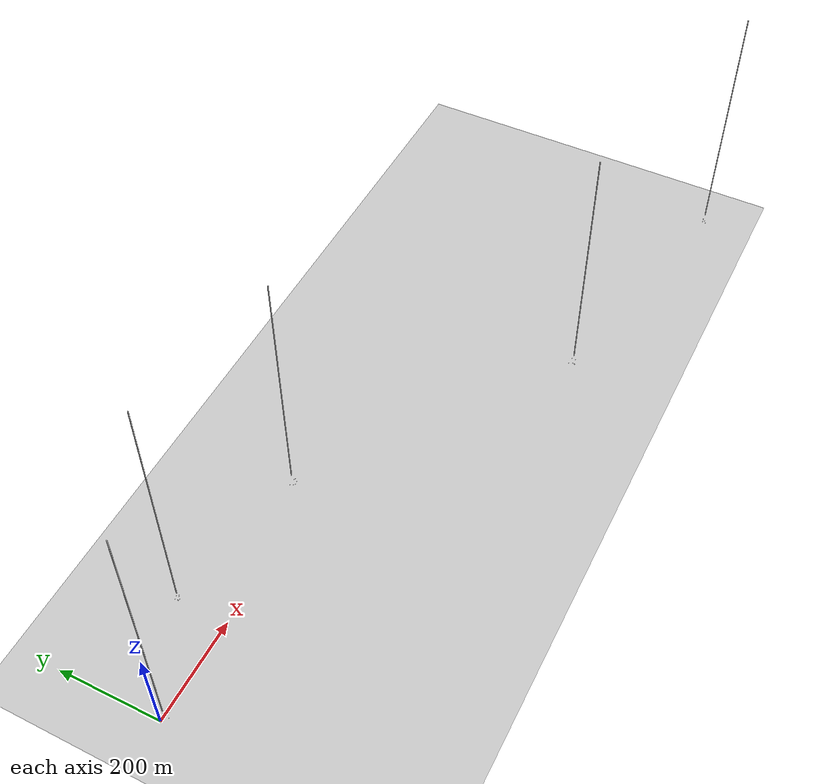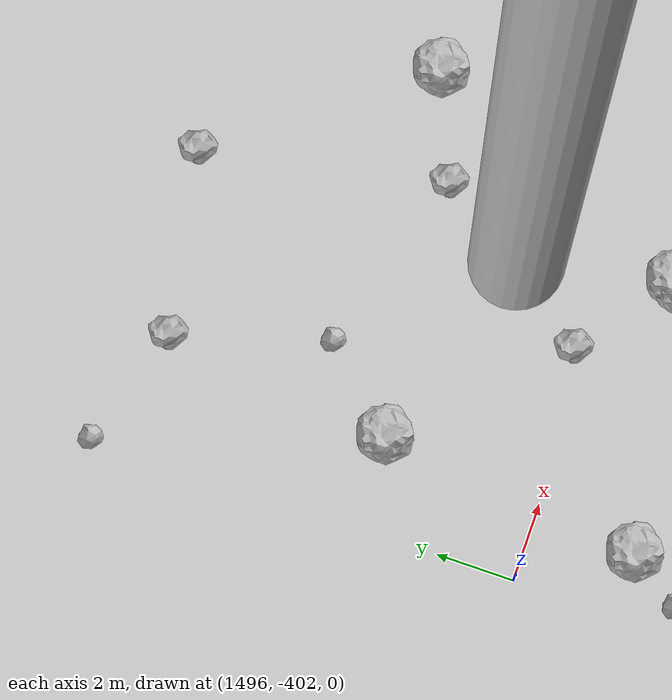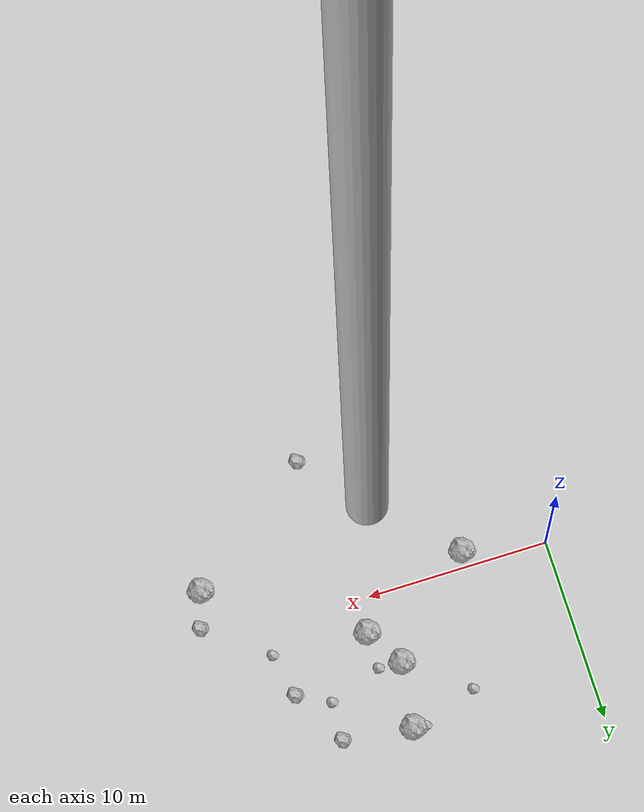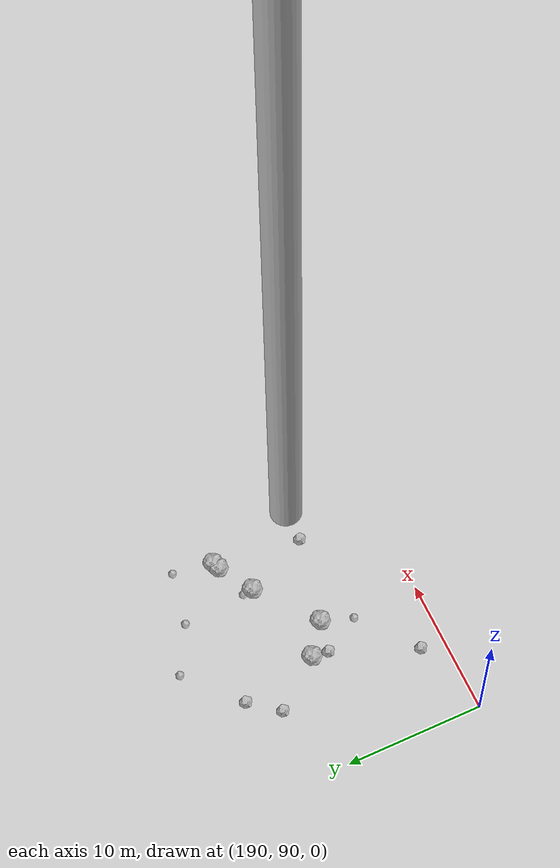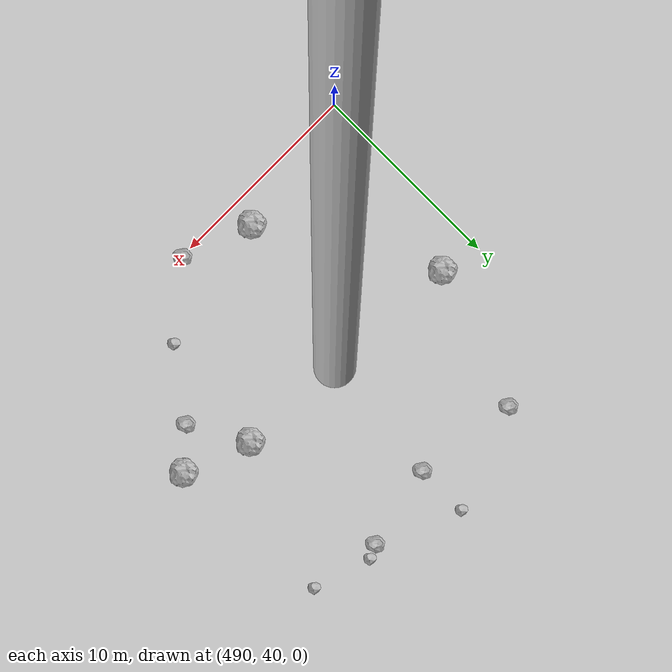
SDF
<?xml version="1.0" ?>
<sdf version="1.6">
  <world name="default">

    <include>
      <uri>model://custom_ground</uri>
    </include>

    <include>
      <uri>model://sun</uri>
    </include>

    <spherical_coordinates>
      <surface_model>EARTH_WGS84</surface_model>
      <latitude_deg>38.161479</latitude_deg>
      <longitude_deg>-122.454630</longitude_deg>
      <elevation>488.0</elevation>
      <heading_deg>90</heading_deg>
    </spherical_coordinates>

    <model name="rock1_0_0">
      <include>
        <uri>model://rock1</uri>
        <pose>9.90379367300152 7.508007315065939 0.5 0 0 0</pose>
      </include>
    </model>
    <model name="rock1_0_1">
      <include>
        <uri>model://rock1</uri>
        <pose>18.540897693719558 -2.951803710186887 0.5 0 0 0</pose>
      </include>
    </model>
    <model name="rock1_0_2">
      <include>
        <uri>model://rock1</uri>
        <pose>9.415949505403402 3.9711493835611726 0.5 0 0 0</pose>
      </include>
    </model>
    <model name="rock1_0_3">
      <include>
        <uri>model://rock1</uri>
        <pose>10.699680490979354 1.8861049653599178 0.5 0 0 0</pose>
      </include>
    </model>
    <model name="rock1_0_4">
      <include>
        <uri>model://rock1</uri>
        <pose>4.499470047365803 -0.878562939763734 0.5 0 0 0</pose>
      </include>
    </model>
    <model name="rock2_0_0">
      <include>
        <uri>model://rock2</uri>
        <pose>8.223069263391324 -6.913913357539694 0.3 0 0 0</pose>
      </include>
    </model>
    <model name="rock2_0_1">
      <include>
        <uri>model://rock2</uri>
        <pose>13.64487789986226 7.023971322623076 0.3 0 0 0</pose>
      </include>
    </model>
    <model name="rock2_0_2">
      <include>
        <uri>model://rock2</uri>
        <pose>15.338439763004326 3.9712464187755376 0.3 0 0 0</pose>
      </include>
    </model>
    <model name="rock2_0_3">
      <include>
        <uri>model://rock2</uri>
        <pose>11.492844218405248 -8.327023863360804 0.3 0 0 0</pose>
      </include>
    </model>
    <model name="rock2_0_4">
      <include>
        <uri>model://rock2</uri>
        <pose>19.127992809069557 -1.011253884054888 0.3 0 0 0</pose>
      </include>
    </model>
    <model name="rock3_0_0">
      <include>
        <uri>model://rock3</uri>
        <pose>13.5604166594282 4.880087863003897 0.2 0 0 0</pose>
      </include>
    </model>
    <model name="rock3_0_1">
      <include>
        <uri>model://rock3</uri>
        <pose>6.1730171227443265 6.435085103738956 0.2 0 0 0</pose>
      </include>
    </model>
    <model name="rock3_0_2">
      <include>
        <uri>model://rock3</uri>
        <pose>9.191982745397135 7.553173920890735 0.2 0 0 0</pose>
      </include>
    </model>
    <model name="rock3_0_3">
      <include>
        <uri>model://rock3</uri>
        <pose>15.844570300398964 1.5008563488438718 0.2 0 0 0</pose>
      </include>
    </model>
    <model name="rock3_0_4">
      <include>
        <uri>model://rock3</uri>
        <pose>10.65232605447598 3.858714914421636 0.2 0 0 0</pose>
      </include>
    </model>
    <model name="rock1_1_0">
      <include>
        <uri>model://rock1</uri>
        <pose>200.41401853299664 97.34939775796663 0.5 0 0 0</pose>
      </include>
    </model>
    <model name="rock1_1_1">
      <include>
        <uri>model://rock1</uri>
        <pose>207.70503001521928 102.44587740228664 0.5 0 0 0</pose>
      </include>
    </model>
    <model name="rock1_1_2">
      <include>
        <uri>model://rock1</uri>
        <pose>198.19106031332845 99.03472739154108 0.5 0 0 0</pose>
      </include>
    </model>
    <model name="rock1_1_3">
      <include>
        <uri>model://rock1</uri>
        <pose>204.65815570751582 100.71581327458176 0.5 0 0 0</pose>
      </include>
    </model>
    <model name="rock1_1_4">
      <include>
        <uri>model://rock1</uri>
        <pose>207.21647943519804 102.25450410812236 0.5 0 0 0</pose>
      </include>
    </model>
    <model name="rock2_1_0">
      <include>
        <uri>model://rock2</uri>
        <pose>195.3521923587862 102.54565225908084 0.3 0 0 0</pose>
      </include>
    </model>
    <model name="rock2_1_1">
      <include>
        <uri>model://rock2</uri>
        <pose>198.05905090882766 97.81115923706844 0.3 0 0 0</pose>
      </include>
    </model>
    <model name="rock2_1_2">
      <include>
        <uri>model://rock2</uri>
        <pose>195.5604495726766 91.80170649885294 0.3 0 0 0</pose>
      </include>
    </model>
    <model name="rock2_1_3">
      <include>
        <uri>model://rock2</uri>
        <pose>197.00760757057637 104.61906864152316 0.3 0 0 0</pose>
      </include>
    </model>
    <model name="rock2_1_4">
      <include>
        <uri>model://rock2</uri>
        <pose>206.8792716972129 95.97147065126605 0.3 0 0 0</pose>
      </include>
    </model>
    <model name="rock3_1_0">
      <include>
        <uri>model://rock3</uri>
        <pose>200.7655266711676 107.9422446565649 0.2 0 0 0</pose>
      </include>
    </model>
    <model name="rock3_1_1">
      <include>
        <uri>model://rock3</uri>
        <pose>199.63744730496757 95.0159190197245 0.2 0 0 0</pose>
      </include>
    </model>
    <model name="rock3_1_2">
      <include>
        <uri>model://rock3</uri>
        <pose>204.59000367682677 101.41129306638197 0.2 0 0 0</pose>
      </include>
    </model>
    <model name="rock3_1_3">
      <include>
        <uri>model://rock3</uri>
        <pose>204.1946538973187 106.05814088852121 0.2 0 0 0</pose>
      </include>
    </model>
    <model name="rock3_1_4">
      <include>
        <uri>model://rock3</uri>
        <pose>208.1997039459421 105.36171571969446 0.2 0 0 0</pose>
      </include>
    </model>
    <model name="rock1_2_0">
      <include>
        <uri>model://rock1</uri>
        <pose>508.0668154373066 47.58998960525839 0.5 0 0 0</pose>
      </include>
    </model>
    <model name="rock1_2_1">
      <include>
        <uri>model://rock1</uri>
        <pose>497.08527926876224 41.30704429614637 0.5 0 0 0</pose>
      </include>
    </model>
    <model name="rock1_2_2">
      <include>
        <uri>model://rock1</uri>
        <pose>504.68005094344477 48.82423287675555 0.5 0 0 0</pose>
      </include>
    </model>
    <model name="rock1_2_3">
      <include>
        <uri>model://rock1</uri>
        <pose>492.05498034906515 49.51648703250136 0.5 0 0 0</pose>
      </include>
    </model>
    <model name="rock1_2_4">
      <include>
        <uri>model://rock1</uri>
        <pose>494.38250854049306 44.74786353025897 0.5 0 0 0</pose>
      </include>
    </model>
    <model name="rock2_2_0">
      <include>
        <uri>model://rock2</uri>
        <pose>503.85645995669313 56.71442131777347 0.3 0 0 0</pose>
      </include>
    </model>
    <model name="rock2_2_1">
      <include>
        <uri>model://rock2</uri>
        <pose>494.4533683416156 56.5519911826753 0.3 0 0 0</pose>
      </include>
    </model>
    <model name="rock2_2_2">
      <include>
        <uri>model://rock2</uri>
        <pose>500.56809797516183 40.043483888269634 0.3 0 0 0</pose>
      </include>
    </model>
    <model name="rock2_2_3">
      <include>
        <uri>model://rock2</uri>
        <pose>499.67337808988304 55.80330498886792 0.3 0 0 0</pose>
      </include>
    </model>
    <model name="rock2_2_4">
      <include>
        <uri>model://rock2</uri>
        <pose>506.2644537244189 45.99089105808918 0.3 0 0 0</pose>
      </include>
    </model>
    <model name="rock3_2_0">
      <include>
        <uri>model://rock3</uri>
        <pose>507.4717515411403 56.09352827218028 0.2 0 0 0</pose>
      </include>
    </model>
    <model name="rock3_2_1">
      <include>
        <uri>model://rock3</uri>
        <pose>499.66713099198154 58.48410904882892 0.2 0 0 0</pose>
      </include>
    </model>
    <model name="rock3_2_2">
      <include>
        <uri>model://rock3</uri>
        <pose>507.6440008145482 47.266970067102385 0.2 0 0 0</pose>
      </include>
    </model>
    <model name="rock3_2_3">
      <include>
        <uri>model://rock3</uri>
        <pose>503.86523428919133 42.7307613474081 0.2 0 0 0</pose>
      </include>
    </model>
    <model name="rock3_2_4">
      <include>
        <uri>model://rock3</uri>
        <pose>504.5265872643802 57.006644246828714 0.2 0 0 0</pose>
      </include>
    </model>
    <model name="rock1_3_0">
      <include>
        <uri>model://rock1</uri>
        <pose>996.4469315171577 -300.3162439560733 0.5 0 0 0</pose>
      </include>
    </model>
    <model name="rock1_3_1">
      <include>
        <uri>model://rock1</uri>
        <pose>1007.0940950225374 -301.6990084352023 0.5 0 0 0</pose>
      </include>
    </model>
    <model name="rock1_3_2">
      <include>
        <uri>model://rock1</uri>
        <pose>1006.4898084286343 -294.75604723959304 0.5 0 0 0</pose>
      </include>
    </model>
    <model name="rock1_3_3">
      <include>
        <uri>model://rock1</uri>
        <pose>995.1165504162097 -305.9009036526436 0.5 0 0 0</pose>
      </include>
    </model>
    <model name="rock1_3_4">
      <include>
        <uri>model://rock1</uri>
        <pose>996.0770741148857 -303.1173656705412 0.5 0 0 0</pose>
      </include>
    </model>
    <model name="rock2_3_0">
      <include>
        <uri>model://rock2</uri>
        <pose>1007.6316255633186 -304.0253361272812 0.3 0 0 0</pose>
      </include>
    </model>
    <model name="rock2_3_1">
      <include>
        <uri>model://rock2</uri>
        <pose>1008.2631032226303 -296.52598063456486 0.3 0 0 0</pose>
      </include>
    </model>
    <model name="rock2_3_2">
      <include>
        <uri>model://rock2</uri>
        <pose>1001.3402567424667 -296.7804581607377 0.3 0 0 0</pose>
      </include>
    </model>
    <model name="rock2_3_3">
      <include>
        <uri>model://rock2</uri>
        <pose>994.1316844206461 -294.39430427171453 0.3 0 0 0</pose>
      </include>
    </model>
    <model name="rock2_3_4">
      <include>
        <uri>model://rock2</uri>
        <pose>992.3870736007116 -293.5253269949326 0.3 0 0 0</pose>
      </include>
    </model>
    <model name="rock3_3_0">
      <include>
        <uri>model://rock3</uri>
        <pose>1006.4570875787775 -303.58099624626726 0.2 0 0 0</pose>
      </include>
    </model>
    <model name="rock3_3_1">
      <include>
        <uri>model://rock3</uri>
        <pose>1007.3232196295783 -303.7789853264921 0.2 0 0 0</pose>
      </include>
    </model>
    <model name="rock3_3_2">
      <include>
        <uri>model://rock3</uri>
        <pose>996.5372741611251 -301.4097561384844 0.2 0 0 0</pose>
      </include>
    </model>
    <model name="rock3_3_3">
      <include>
        <uri>model://rock3</uri>
        <pose>1004.9748563604309 -307.69939547991606 0.2 0 0 0</pose>
      </include>
    </model>
    <model name="rock3_3_4">
      <include>
        <uri>model://rock3</uri>
        <pose>1003.3203888474145 -293.8029351595142 0.2 0 0 0</pose>
      </include>
    </model>
    <model name="rock1_4_0">
      <include>
        <uri>model://rock1</uri>
        <pose>1498.407758495194 -397.85142314414236 0.5 0 0 0</pose>
      </include>
    </model>
    <model name="rock1_4_1">
      <include>
        <uri>model://rock1</uri>
        <pose>1507.6001554441366 -396.2182707312811 0.5 0 0 0</pose>
      </include>
    </model>
    <model name="rock1_4_2">
      <include>
        <uri>model://rock1</uri>
        <pose>1504.3877186614511 -403.3814574988724 0.5 0 0 0</pose>
      </include>
    </model>
    <model name="rock1_4_3">
      <include>
        <uri>model://rock1</uri>
        <pose>1497.614148212875 -404.5703670072013 0.5 0 0 0</pose>
      </include>
    </model>
    <model name="rock1_4_4">
      <include>
        <uri>model://rock1</uri>
        <pose>1504.2657960157997 -403.63038254427016 0.5 0 0 0</pose>
      </include>
    </model>
    <model name="rock2_4_0">
      <include>
        <uri>model://rock2</uri>
        <pose>1502.0069318727667 -401.53654901157205 0.3 0 0 0</pose>
      </include>
    </model>
    <model name="rock2_4_1">
      <include>
        <uri>model://rock2</uri>
        <pose>1499.1055468739917 -391.93508527783314 0.3 0 0 0</pose>
      </include>
    </model>
    <model name="rock2_4_2">
      <include>
        <uri>model://rock2</uri>
        <pose>1503.7641081324844 -391.1008213442957 0.3 0 0 0</pose>
      </include>
    </model>
    <model name="rock2_4_3">
      <include>
        <uri>model://rock2</uri>
        <pose>1504.9677053342425 -397.3006190730319 0.3 0 0 0</pose>
      </include>
    </model>
    <model name="rock2_4_4">
      <include>
        <uri>model://rock2</uri>
        <pose>1507.2862037425773 -404.4614078997086 0.3 0 0 0</pose>
      </include>
    </model>
    <model name="rock3_4_0">
      <include>
        <uri>model://rock3</uri>
        <pose>1505.5455091029987 -400.16600788140755 0.2 0 0 0</pose>
      </include>
    </model>
    <model name="rock3_4_1">
      <include>
        <uri>model://rock3</uri>
        <pose>1496.7195823939915 -408.69303480463265 0.2 0 0 0</pose>
      </include>
    </model>
    <model name="rock3_4_2">
      <include>
        <uri>model://rock3</uri>
        <pose>1496.6403905112652 -405.9466264551599 0.2 0 0 0</pose>
      </include>
    </model>
    <model name="rock3_4_3">
      <include>
        <uri>model://rock3</uri>
        <pose>1500.2289649161662 -395.8818035533113 0.2 0 0 0</pose>
      </include>
    </model>
    <model name="rock3_4_4">
      <include>
        <uri>model://rock3</uri>
        <pose>1496.0066543992973 -390.9962755170686 0.2 0 0 0</pose>
      </include>
    </model>

    <model name="cylinder_1">
      <static>true</static>
      <link name="link">
        <visual name="visual">
          <geometry>
            <cylinder>
              <radius>1</radius>
              <length>500</length>
            </cylinder>
          </geometry>
        </visual>
      </link>
      <pose>10 0 270 0 0 0</pose>
    </model>

    <model name="cylinder_2">
      <static>true</static>
      <link name="link">
        <visual name="visual">
          <geometry>
            <cylinder>
              <radius>1</radius>
              <length>500</length>
            </cylinder>
          </geometry>
        </visual>
      </link>
      <pose>200 100 270 0 0 0</pose>
    </model>

    <model name="cylinder_3">
      <static>true</static>
      <link name="link">
        <visual name="visual">
          <geometry>
            <cylinder>
              <radius>1</radius>
              <length>500</length>
            </cylinder>
          </geometry>
        </visual>
      </link>
      <pose>500 50 270 0 0 0</pose>
    </model>

    <model name="cylinder_4">
      <static>true</static>
      <link name="link">
        <visual name="visual">
          <geometry>
            <cylinder>
              <radius>1</radius>
              <length>500</length>
            </cylinder>
          </geometry>
        </visual>
      </link>
      <pose>1000 -300 270 0 0 0</pose>
    </model>

    <model name="cylinder_5">
      <static>true</static>
      <link name="link">
        <visual name="visual">
          <geometry>
            <cylinder>
              <radius>1</radius>
              <length>500</length>
            </cylinder>
          </geometry>
        </visual>
      </link>
      <pose>1500 -400 270 0 0 0</pose>
    </model>

  </world>
</sdf>

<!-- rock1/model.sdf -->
<sdf version="1.6">
  <model name="rock1">
    <static>true</static> <!-- Set to true if the model should not move -->
    <pose>0 0 0 0 0 0</pose>

    <!--z offset is 0.5 for full scale-->

    <link name="link">
      <collision name="rock1_collision">
        <geometry>
          <mesh>
            <uri>model://meshes/rock1.dae</uri>
          </mesh>
        </geometry>
      </collision>
      <visual name="rock1_visual">
        <geometry>
          <mesh>
            <uri>model://meshes/rock1.dae</uri>
          </mesh>
        </geometry>
        <material>
          <script>
            <uri>model://materials/scripts/sand_pebbles.material</uri>
            <name>custom_ground/Image</name>
          </script>
        </material>
      </visual>
    </link>
  </model>
</sdf>

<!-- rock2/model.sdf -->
<sdf version="1.6">
  <model name="rock2">
    <static>true</static> <!-- Set to true if the model should not move -->
    <pose>0 0 0 0 0 0</pose>

    <!--z offset is 0.3 for full scale-->

    <link name="link">
      <collision name="rock2_collision">
        <geometry>
          <mesh>
            <uri>model://meshes/rock2.dae</uri>
          </mesh>
        </geometry>
      </collision>
      <visual name="rock2_visual">
        <geometry>
          <mesh>
            <uri>model://meshes/rock2.dae</uri>
          </mesh>
        </geometry>
        <material>
          <script>
            <uri>model://materials/scripts/sand_pebbles.material</uri>
            <name>custom_ground/Image</name>
          </script>
        </material>
      </visual>
    </link>
  </model>
</sdf>

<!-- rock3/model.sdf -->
<sdf version="1.6">
  <model name="rock3">
    <static>true</static> <!-- Set to true if the model should not move -->
    <pose>0 0 0 0 0 0</pose>

    <!--z offset is 0.2 for full scale-->

    <link name="link">
      <collision name="rock3_collision">
        <geometry>
          <mesh>
            <uri>model://meshes/rock3.dae</uri>
          </mesh>
        </geometry>
      </collision>
      <visual name="rock3_visual">
        <geometry>
          <mesh>
            <uri>model://meshes/rock3.dae</uri>
          </mesh>
        </geometry>
        <material>
          <script>
            <uri>model://materials/scripts/sand_pebbles.material</uri>
            <name>custom_ground/Image</name>
          </script>
        </material>
      </visual>
    </link>
  </model>
</sdf>

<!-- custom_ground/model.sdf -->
<sdf version="1.6">
  <model name="custom_ground">
    <static>true</static> <!-- Ground is static and immovable -->
    <link name="ground_link">
      <pose>240 0 0 0 0 0</pose> <!-- Position and orientation relative to the world -->
      <!-- Visual Representation -->
      <visual name="ground_visual">
        <geometry>
          <plane>
            <normal>0 0 1</normal> <!-- Upward facing plane -->
            <size>500 500</size> <!-- Size of the plane -->
          </plane>
        </geometry>
        <material>
          <script>
            <uri>model://materials/scripts/sand_pebbles.material</uri>
            <name>custom_ground/Image</name>
          </script>
        </material>
      </visual>

      <!-- Collision Representation -->
      <collision name="ground_collision">
        <geometry>
          <plane>
            <normal>0 0 1</normal>
            <size>100 100</size>
          </plane>
        </geometry>
      </collision>

    </link>
  </model>
</sdf>
